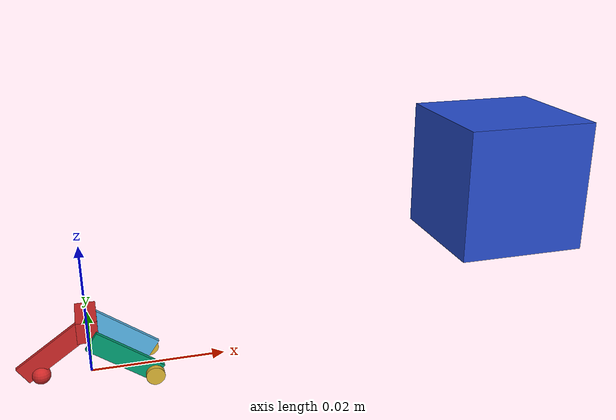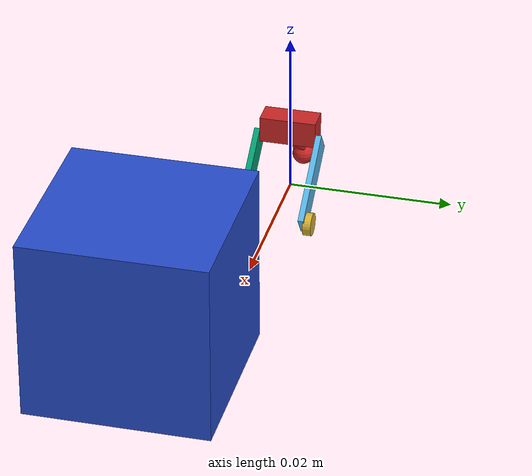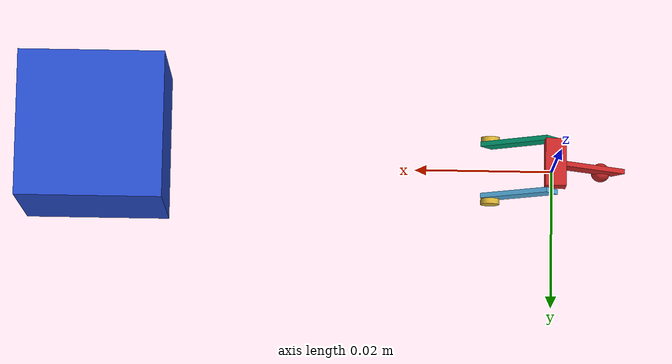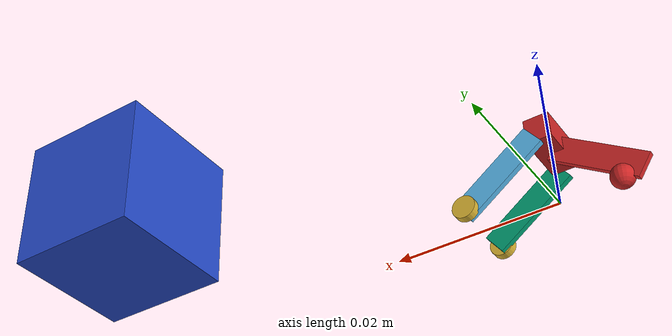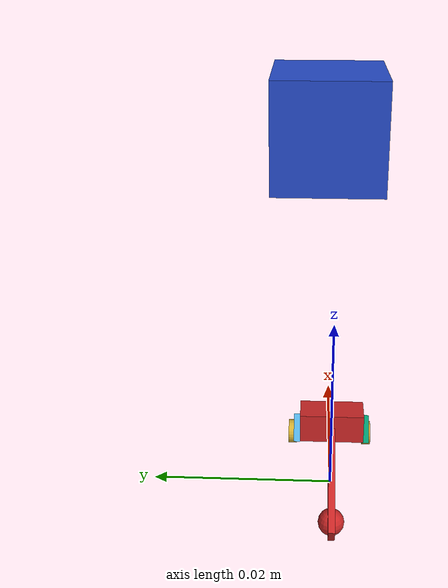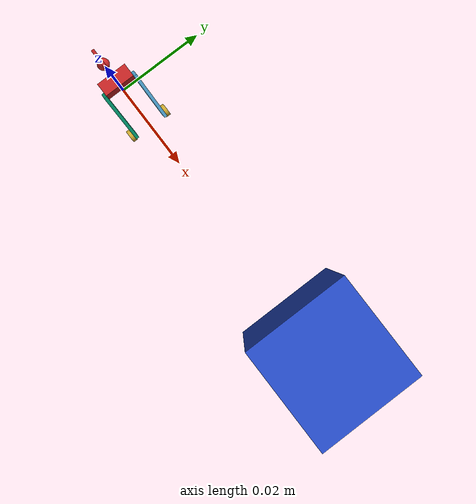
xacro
<?xml version='1.0'?>

<robot name="astromech" xmlns:xacro="http://www.ros.org/wiki/xacro">

  <xacro:include filename="$(find astromech_description)/urdf/astromech.gazebo" />
  <!--xacro:include filename="$(find astromech_description)/urdf/materials.xacro" /-->
  <!--xacro:include filename="$(find astromech_description)/urdf/macros.xacro"/-->
  <xacro:include filename="$(find astromech_description)/urdf/astromech.cameraplugin.xacro" />
  <!--xacro:include filename="$(find astromech_description)/urdf/materials.xacro" /-->
  <xacro:include filename="$(find astromech_description)/urdf/macros.xacro"/>
  <xacro:property name="camera_size" value="0.02"/>
  <xacro:property name="camera_origin_x" value="0.065"/>
  <xacro:property name="camera_origin_y" value="0"/>
  <xacro:property name="camera_origin_z" value="0.025"/>

	<xacro:macro name="default_inertial" params="mass">
    <inertial>
      <mass value="${mass}"/>
      <inertia ixx="1.0" ixy="0.0" ixz="0.0" iyy="1.0" iyz="0.0" izz="1.0"/>
    </inertial>
  </xacro:macro>

  <link name='chassis'>
    <pose>0 0 0.0081 0 0 0</pose >
    <inertial>
      <mass value="1"/>
      <origin xyz="0.0 0 0.0081" rpy=" 0 0 0"/>
      <inertia
          ixx="0.0001" ixy="0" ixz="0"
          iyy="0.0001" iyz="0"
          izz="0.0001"
      />
    </inertial>

    <collision name='collision'>
      <origin xyz="0 0 0.0081" rpy=" 0 0 0"/>
      <geometry>
        <box size="0.003 0.00687 0.0032"/>
      </geometry>
    </collision>

    <visual name='chassis_visual'>
      <origin xyz="0 0 0.0081" rpy=" 0 0 0"/>
      <geometry>
        <box size="0.003 0.00687 0.0032"/>
      </geometry>
    </visual>

    <collision name='caster_collision'>
      <origin rpy="0 0 0" xyz="-0.007115 0 0.0005"/>
      <geometry>
        <sphere radius="0.001385"/>
      </geometry>
      <surface>
        <friction>
          <ode>
            <mu>0</mu>
            <mu2>0</mu2>
            <slip1>1.0</slip1>
            <slip2>1.0</slip2>
          </ode>
        </friction>
      </surface>
    </collision>

    <visual name='caster_visual'>
      <origin rpy="0 0 0" xyz="-0.007115 0 0.0005"/>
      <geometry>
        <sphere radius="0.001385"/>
      </geometry>
    </visual>

    <collision name='back_leg_collision'>
      <origin rpy="0 0.97 0" xyz="-0.005 0 0.004"/>
      <geometry>
        <box size="0.003 0.0007 0.01135"/>
      </geometry>
    </collision>

    <visual name='back_leg_visual'>
      <origin rpy="0 0.97 0" xyz="-0.005 0 0.004"/>
      <geometry>
        <box size="0.003 0.0007 0.01135"/>
      </geometry>
    </visual>

  </link>

  <link name="right_leg">
    <visual>
      <geometry>
        <box size="0.003 0.0007 0.01135"/>
      </geometry>
      <origin rpy="0 -0.95 0" xyz="0.005 0.0065 0.00224"/>
    </visual>
  </link>

  <link name="left_leg">
    <visual>
      <geometry>
        <box size="0.003 0.0007 0.01135"/>
      </geometry>
      <origin rpy="0 -0.95 0" xyz="0.005 -0.0065 0.00224"/>
    </visual>
  </link>

  <link name="left_wheel">
    <!--origin xyz="0 -188 0.035" rpy="0 1.5707 1.5707"/-->
    <collision name="collision">
      <origin rpy="0 1.5707 1.5707" xyz="0 0 0"/>
      <geometry>
        <cylinder length=".001" radius=".001385"/>
      </geometry>
    </collision>
    <visual name="left_wheel_visual">
      <origin rpy="0 1.5707 1.5707" xyz="0 0 0"/>
      <geometry>
        <cylinder length=".001" radius=".001385"/>
      </geometry>
    </visual>
    <inertial>
      <origin rpy="0 1.5707 1.5707" xyz="0 0 0"/>
      <mass value="0.001"/>
      <cylinder_inertia m="0.01" r="0.001385" h="0.001"/>
      <inertia
        ixx="0.001" ixy="0.0" ixz="0.0"
        iyy="0.001" iyz="0.0"
        izz="0.001"/>
    </inertial>
  </link>

  <link name="right_wheel">
    <!--origin xyz="0 188 0.035" rpy="0 1.5707 1.5707"/-->
    <collision name="collision">
      <origin rpy="0 1.5707 1.5707" xyz="0 0 0"/>
      <geometry>
        <cylinder length=".001" radius=".001385"/>
      </geometry>
    </collision>
    <visual name="right_wheel_visual">
      <origin rpy="0 1.5707 1.5707" xyz="0 0 0"/>
      <geometry>
        <cylinder length=".001" radius=".001385"/>
      </geometry>
    </visual>
    <inertial>
      <origin rpy="0 1.5707 1.5707" xyz="0 0 0"/>
      <mass value="0.001"/>
      <cylinder_inertia m="0.01" r="0.001385" h="0.001"/>
      <inertia
        ixx="0.001" ixy="0.0" ixz="0.0"
        iyy="0.001" iyz="0.0"
        izz="0.001"/>
    </inertial>
  </link>

  <joint name="base_to_left_leg" type="fixed">
    <parent link="chassis"/>
    <child link="left_leg"/>
    <origin xyz="0 0.0027 0.001385"/>
  </joint>

  <joint name="base_to_right_leg" type="fixed">
    <parent link="chassis"/>
    <child link="right_leg"/>
    <origin xyz="0 -0.0027 0.001385"/>
  </joint>

  <joint type="continuous" name="left_wheel_hinge">
    <origin xyz="0.009 -0.00447 0.000385" rpy="0 0 0"/>
    <child link="left_wheel"/>
    <parent link="chassis"/>
    <axis xyz="0 1 0" rpy="0 0 0"/>
    <limit effort="100" velocity="100"/>
    <joint_properties damping="0.0" friction="0.0"/>
  </joint>

  <joint type="continuous" name="right_wheel_hinge">
    <origin xyz="0.009 0.00447 0.000385" rpy="0 0 0"/>
    <child link="right_wheel"/>
    <parent link="chassis"/>
    <axis xyz="0 1 0" rpy="0 0 0"/>
    <limit effort="100" velocity="100"/>
    <joint_properties damping="0.0" friction="0.0"/>
  </joint>
<!--Camera-->
  <link name="camera">
    <visual>
      <geometry>
        <box size="${camera_size} ${camera_size} ${camera_size}"/>
      </geometry>
      <material name="blue"/>
    </visual>
    <collision>
      <geometry>
        <box size="${camera_size} ${camera_size} ${camera_size}"/>
      </geometry>
    </collision>
    <xacro:default_inertial mass="0.02"/>
  </link>

  <joint name="camera_joint" type="fixed">
    <origin xyz="${camera_origin_x} ${camera_origin_y} ${camera_origin_z}" rpy="0 0 0"/>
    <parent link="chassis"/>
    <child link="camera"/>
  </joint>

</robot>
